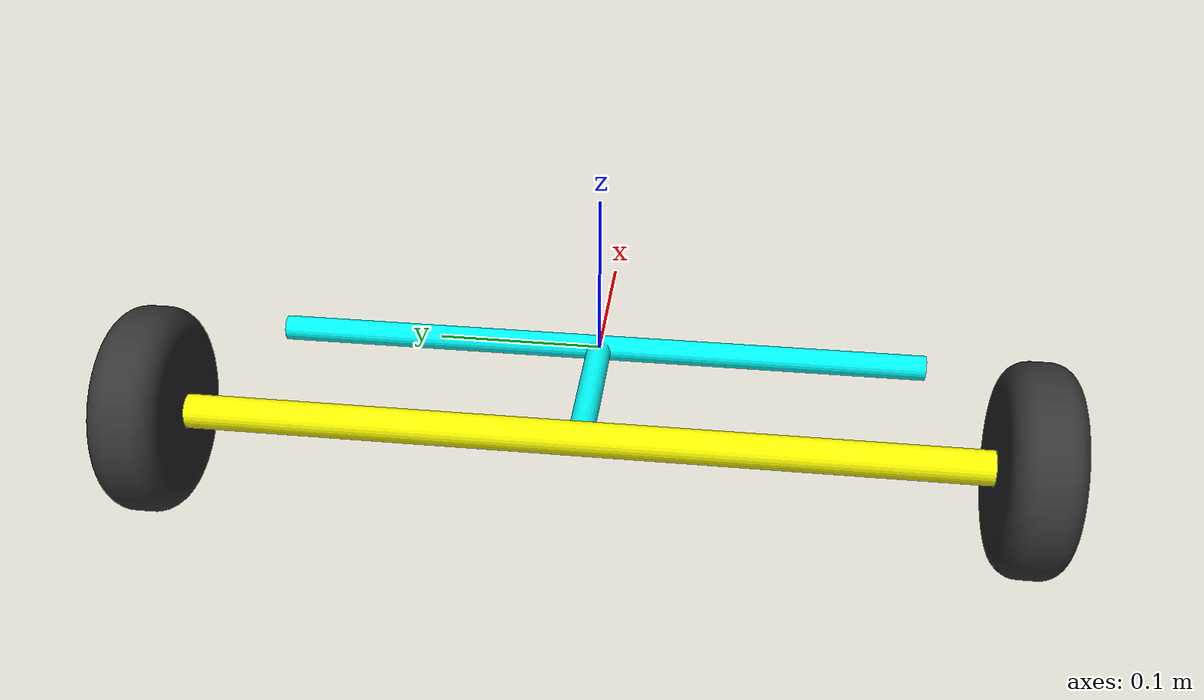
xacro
<?xml version="1.0" encoding="utf-8"?>
<robot xmlns:xacro="http://www.ros.org/wiki/xacro" name="doublebar">
	<xacro:include filename="$(find transbot_description)/urdf/rigid_forklift_dsusp_rr_inner/mobilebase/doublebar.urdf.xacro"></xacro:include>
	<xacro:doublebar prefix="" name=""></xacro:doublebar>
</robot>

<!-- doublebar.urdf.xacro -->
<robot xmlns:xacro="http://www.ros.org/wiki/xacro" name="doublebar">
	<xacro:macro name="doublebar" params="prefix='' name='doublebar' suffix=''">
		<link name="${prefix}${name}${suffix}_">
			<inertial density="7850">
				<origin xyz="-0.008635962594894978 2.2779302906492143e-10 -4.791776038082412e-10" rpy="0 0 0"></origin>
				<mass value="0.025343882346836228"></mass>
				<inertia ixx="0.0004046535356868238" ixy="1.3055853654899202e-14" ixz="2.1266118866921296e-13" iyy="1.3845710803626174e-05" iyz="-4.3368089665789023e-14" izz="0.0004172676675035086"></inertia>
			</inertial>
			<visual>
				<geometry>
					<mesh filename="file:$(find transbot_description)/meshes/rigid_forklift_dsusp_rr_inner/mobilebase/doublebar/_.stl" scale="1e-3 1e-3 1e-3"></mesh>
				</geometry>
				<material name="">
					<color rgba="0 1 1 1"></color>
				</material>
			</visual>
			<collision>
				<geometry>
					<mesh filename="file:$(find transbot_description)/meshes/rigid_forklift_dsusp_rr_inner/mobilebase/doublebar/_.stl" scale="1e-3 1e-3 1e-3"></mesh>
				</geometry>
			</collision>
		</link>
		<xacro:include filename="$(find transbot_description)/urdf/rigid_forklift_dsusp_rr_inner/mobilebase/doublebar/diff/diff.urdf.xacro"></xacro:include>
		<joint name="j/${prefix}${name}${suffix}diff/_" type="continuous">
			<origin xyz="-0.1 0.0 0.0" rpy="0.0 0.0 0.0"></origin>
			<parent link="${prefix}${name}${suffix}_"></parent>
			<child link="${prefix}${name}${suffix}diff/_"></child>
			<dynamics damping="10" friction="10"></dynamics>
			<axis xyz="1 0 0"></axis>
		</joint>
		<xacro:diff prefix="${prefix}${name}${suffix}" suffix="/"></xacro:diff>
	</xacro:macro>
</robot>

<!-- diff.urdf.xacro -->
<robot xmlns:xacro="http://www.ros.org/wiki/xacro" name="diff">
	<xacro:macro name="diff" params="prefix='' name='diff' suffix=''">
		<link name="${prefix}${name}${suffix}_">
			<inertial density="7850">
				<origin xyz="-4.068478350109102e-11 -1.8579384465498233e-09 1.9870914441743804e-10" rpy="0 0 0"></origin>
				<mass value="0.17464581954603395"></mass>
				<inertia ixx="0.004568412068787589" ixy="1.320144666685382e-20" ixz="7.517120943432255e-16" iyy="8.668682956643647e-06" iyz="-2.0724169574074076e-13" izz="0.00456841207257715"></inertia>
			</inertial>
			<visual>
				<geometry>
					<mesh filename="file:$(find transbot_description)/meshes/rigid_forklift_dsusp_rr_inner/mobilebase/doublebar/diff/_.stl" scale="1e-3 1e-3 1e-3"></mesh>
				</geometry>
				<material name="">
					<color rgba="1 1 0 1"></color>
				</material>
			</visual>
			<collision>
				<geometry>
					<mesh filename="file:$(find transbot_description)/meshes/rigid_forklift_dsusp_rr_inner/mobilebase/doublebar/diff/_.stl" scale="1e-3 1e-3 1e-3"></mesh>
				</geometry>
			</collision>
		</link>
		<xacro:include filename="$(find transbot_description)/urdf/rigid_forklift_dsusp_rr_inner/mobilebase/doublebar/diff/wheel.urdf.xacro"></xacro:include>
		<joint name="j/${prefix}${name}${suffix}wheel0" type="continuous">
			<origin xyz="0.0 -0.25 0.0" rpy="-1.5707963267948966 0.0 0.0"></origin>
			<parent link="${prefix}${name}${suffix}_"></parent>
			<child link="${prefix}${name}${suffix}wheel0"></child>
			<axis xyz="0 0 1"></axis>
		</joint>
		<joint name="j/${prefix}${name}${suffix}wheel1" type="continuous">
			<origin xyz="0.0 0.25 0.0" rpy="-1.5707963267948966 0.0 0.0"></origin>
			<parent link="${prefix}${name}${suffix}_"></parent>
			<child link="${prefix}${name}${suffix}wheel1"></child>
			<axis xyz="0 0 1"></axis>
		</joint>
		<xacro:wheel prefix="${prefix}${name}${suffix}" suffix="0"></xacro:wheel>
		<xacro:wheel prefix="${prefix}${name}${suffix}" suffix="1"></xacro:wheel>
	</xacro:macro>
</robot>

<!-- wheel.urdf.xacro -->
<robot xmlns:xacro="http://www.ros.org/wiki/xacro" name="wheel">
	<xacro:macro name="wheel" params="prefix='' name='wheel' suffix=''">
		<link name="${prefix}${name}${suffix}">
			<inertial density="2500">
				<origin xyz="1.0821533058116455e-11 -3.3899456255370624e-10 -2.110198946332709e-10" rpy="0 0 0"></origin>
				<mass value="0.437733872483174"></mass>
				<inertia ixx="0.00046364856795359316" ixy="-4.0216961721366314e-12" ixz="-3.552713688796411e-13" iyy="0.0004636485679535932" iyz="4.626242400432536e-16" izz="0.0008105681748323452"></inertia>
			</inertial>
			<visual>
				<geometry>
					<mesh filename="file:$(find transbot_description)/meshes/rigid_forklift_dsusp_rr_inner/mobilebase/doublebar/diff/wheel.stl" scale="1e-3 1e-3 1e-3"></mesh>
				</geometry>
				<material name="">
					<color rgba="0.2 0.2 0.2 1"></color>
				</material>
			</visual>
			<collision>
				<geometry>
					<mesh filename="file:$(find transbot_description)/meshes/rigid_forklift_dsusp_rr_inner/mobilebase/doublebar/diff/wheel.stl" scale="1e-3 1e-3 1e-3"></mesh>
				</geometry>
			</collision>
		</link>
	</xacro:macro>
</robot>
